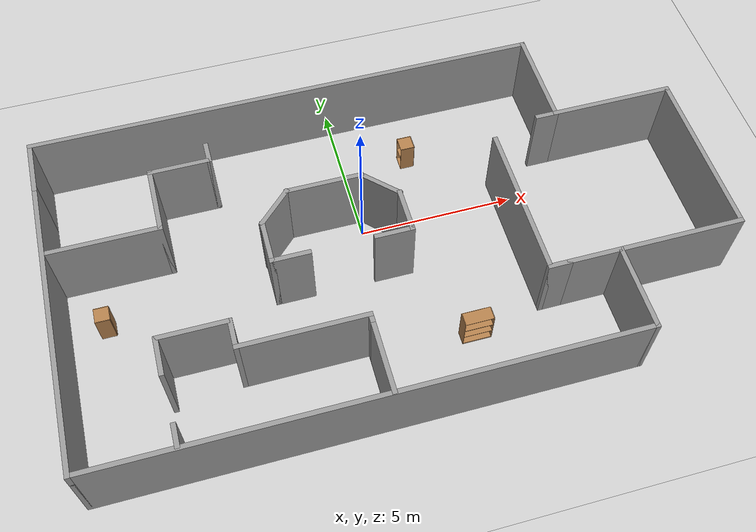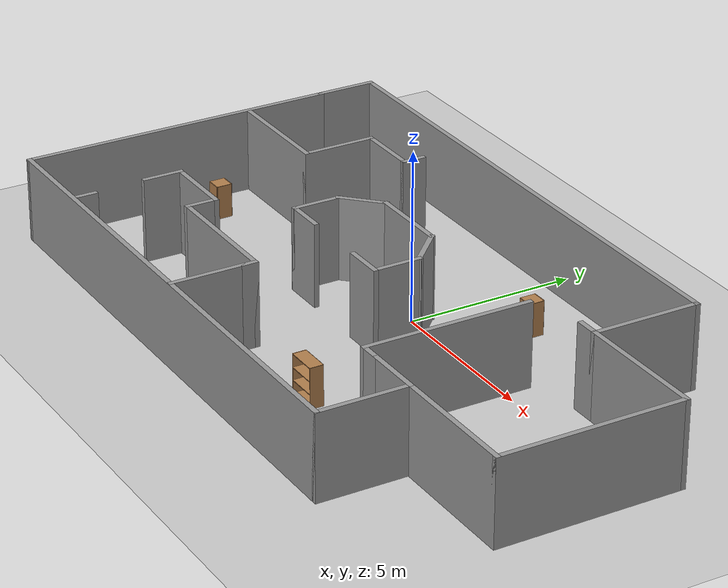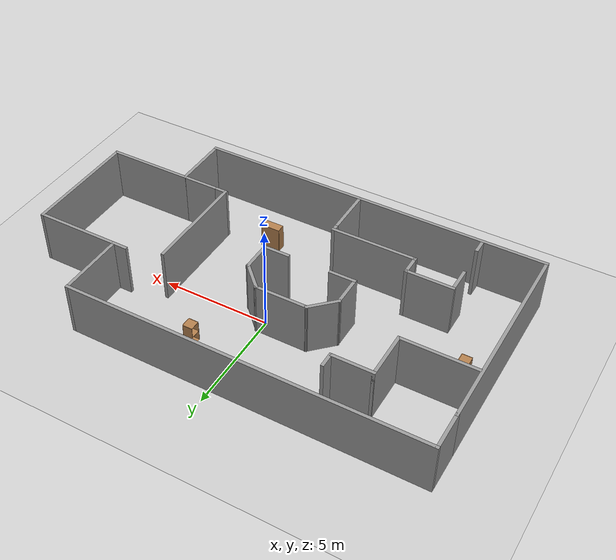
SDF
<sdf version="1.7">
 <world name="default">
  <light name="sun" type="directional">
   <pose>0 0 10 0 -0 0</pose>
   <diffuse>0.8 0.8 0.8 1</diffuse>
   <specular>0.2 0.2 0.2 1</specular>
   <attenuation>
    <range>1000</range>
    <constant>0.9</constant>
    <linear>0.01</linear>
    <quadratic>0.001</quadratic>
   </attenuation>
   <direction>-0.5 0.1 -0.9</direction>
   <spot><inner_angle>0</inner_angle><outer_angle>0</outer_angle><falloff>0</falloff></spot>
  </light>
  <model name="ground_plane">
   <static>1</static>
   <link name="link">
    <collision name="collision">
     <geometry><plane><normal>0 0 1</normal><size>100 100</size></plane></geometry>
     <surface>
      <contact><collide_bitmask>65535</collide_bitmask></contact>
      <friction><ode><mu>100</mu><mu2>50</mu2></ode></friction>
     </surface>
    </collision>
    <visual name="visual">
     <cast_shadows>0</cast_shadows>
     <geometry><plane><normal>0 0 1</normal><size>100 100</size></plane></geometry>
     <material>
      <script><uri>file://media/materials/scripts/gazebo.material</uri><name>Gazebo/Grey</name></script>
     </material>
    </visual>
   </link>
  </model>
  <gravity>0 0 -9.8</gravity>
  <magnetic_field>6e-06 2.3e-05 -4.2e-05</magnetic_field>
  <atmosphere type="adiabatic"/>
  <physics type="ode">
   <max_step_size>0.001</max_step_size>
   <real_time_factor>1</real_time_factor>
   <real_time_update_rate>1000</real_time_update_rate>
  </physics>
  <scene><ambient>0.4 0.4 0.4 1</ambient><background>0.7 0.7 0.7 1</background><shadows>1</shadows></scene>
  <spherical_coordinates>
   <surface_model>EARTH_WGS84</surface_model>
   <latitude_deg>0</latitude_deg>
   <longitude_deg>0</longitude_deg>
   <elevation>0</elevation>
   <heading_deg>0</heading_deg>
  </spherical_coordinates>
  <model name="layer3">
   <pose>0.50924 -1.20559 0 0 -0 0</pose>
   <link name="Wall_0">
    <collision name="Wall_0_Collision">
     <geometry><box><size>9.5 0.15 2.5</size></box></geometry>
     <pose>0 0 1.25 0 -0 0</pose>
    </collision>
    <visual name="Wall_0_Visual">
     <pose>0 0 1.25 0 -0 0</pose>
     <geometry><box><size>9.5 0.15 2.5</size></box></geometry>
     <material>
      <script><uri>file://media/materials/scripts/gazebo.material</uri><name>Gazebo/Grey</name></script>
      <ambient>1 1 1 1</ambient>
     </material>
     <meta><layer>0</layer></meta>
    </visual>
    <pose>-10.1 -0.85 0 0 -0 -1.5708</pose>
   </link>
   <link name="Wall_1">
    <collision name="Wall_1_Collision">
     <geometry><box><size>16.5 0.15 2.5</size></box></geometry>
     <pose>0 0 1.25 0 -0 0</pose>
    </collision>
    <visual name="Wall_1_Visual">
     <pose>0 0 1.25 0 -0 0</pose>
     <geometry><box><size>16.5 0.15 2.5</size></box></geometry>
     <material>
      <script><uri>file://media/materials/scripts/gazebo.material</uri><name>Gazebo/Grey</name></script>
      <ambient>1 1 1 1</ambient>
     </material>
     <meta><layer>0</layer></meta>
    </visual>
    <pose>-1.925 -5.525 0 0 -0 0</pose>
   </link>
   <link name="Wall_10">
    <collision name="Wall_10_Collision">
     <geometry><box><size>1.5 0.15 2.5</size></box></geometry>
     <pose>0 0 1.25 0 -0 0</pose>
    </collision>
    <visual name="Wall_10_Visual">
     <pose>0 0 1.25 0 -0 0</pose>
     <geometry><box><size>1.5 0.15 2.5</size></box></geometry>
     <material>
      <script><uri>file://media/materials/scripts/gazebo.material</uri><name>Gazebo/Grey</name></script>
      <ambient>1 1 1 1</ambient>
     </material>
     <meta><layer>0</layer></meta>
    </visual>
    <pose>-3.20505 1.23698 0 0 -0 -2.35619</pose>
   </link>
   <link name="Wall_11">
    <collision name="Wall_11_Collision">
     <geometry><box><size>1.5 0.15 2.5</size></box></geometry>
     <pose>0 0 1.25 0 -0 0</pose>
    </collision>
    <visual name="Wall_11_Visual">
     <pose>0 0 1.25 0 -0 0</pose>
     <geometry><box><size>1.5 0.15 2.5</size></box></geometry>
     <material>
      <script><uri>file://media/materials/scripts/gazebo.material</uri><name>Gazebo/Grey</name></script>
      <ambient>1 1 1 1</ambient>
     </material>
     <meta><layer>0</layer></meta>
    </visual>
    <pose>-3.68235 0.08468 0 0 -0 -1.5708</pose>
   </link>
   <link name="Wall_12">
    <collision name="Wall_12_Collision">
     <geometry><box><size>0.16 0.15 2.5</size></box></geometry>
     <pose>0 0 1.25 0 -0 0</pose>
    </collision>
    <visual name="Wall_12_Visual">
     <pose>0 0 1.25 0 -0 0</pose>
     <geometry><box><size>0.16 0.15 2.5</size></box></geometry>
     <material>
      <script><uri>file://media/materials/scripts/gazebo.material</uri><name>Gazebo/Grey</name></script>
      <ambient>1 1 1 1</ambient>
     </material>
     <meta><layer>0</layer></meta>
    </visual>
    <pose>-3.67735 -0.59032 0 0 -0 0</pose>
   </link>
   <link name="Wall_13">
    <collision name="Wall_13_Collision">
     <geometry><box><size>1.25 0.15 2.5</size></box></geometry>
     <pose>0 0 1.25 0 -0 0</pose>
    </collision>
    <visual name="Wall_13_Visual">
     <pose>0 0 1.25 0 -0 0</pose>
     <geometry><box><size>1.25 0.15 2.5</size></box></geometry>
     <material>
      <script><uri>file://media/materials/scripts/gazebo.material</uri><name>Gazebo/Grey</name></script>
      <ambient>1 1 1 1</ambient>
     </material>
     <meta><layer>0</layer></meta>
    </visual>
    <pose>-3.12235 -0.59032 0 0 -0 0</pose>
   </link>
   <link name="Wall_15">
    <collision name="Wall_15_Collision">
     <geometry><box><size>2.5 0.15 2.5</size></box></geometry>
     <pose>0 0 1.25 0 -0 0</pose>
    </collision>
    <visual name="Wall_15_Visual">
     <pose>0 0 1.25 0 -0 0</pose>
     <geometry><box><size>2.5 0.15 2.5</size></box></geometry>
     <material>
      <script><uri>file://media/materials/scripts/gazebo.material</uri><name>Gazebo/Grey</name></script>
      <ambient>1 1 1 1</ambient>
     </material>
     <meta><layer>0</layer></meta>
    </visual>
    <pose>-1.55276 1.71427 0 0 -0 0</pose>
   </link>
   <link name="Wall_16">
    <collision name="Wall_16_Collision">
     <geometry><box><size>1.5 0.15 2.5</size></box></geometry>
     <pose>0 0 1.25 0 -0 0</pose>
    </collision>
    <visual name="Wall_16_Visual">
     <pose>0 0 1.25 0 -0 0</pose>
     <geometry><box><size>1.5 0.15 2.5</size></box></geometry>
     <material>
      <script><uri>file://media/materials/scripts/gazebo.material</uri><name>Gazebo/Grey</name></script>
      <ambient>1 1 1 1</ambient>
     </material>
     <meta><layer>0</layer></meta>
    </visual>
    <pose>0.099542 1.23698 0 0 -0 -0.785398</pose>
   </link>
   <link name="Wall_17">
    <collision name="Wall_17_Collision">
     <geometry><box><size>1.5 0.15 2.5</size></box></geometry>
     <pose>0 0 1.25 0 -0 0</pose>
    </collision>
    <visual name="Wall_17_Visual">
     <pose>0 0 1.25 0 -0 0</pose>
     <geometry><box><size>1.5 0.15 2.5</size></box></geometry>
     <material>
      <script><uri>file://media/materials/scripts/gazebo.material</uri><name>Gazebo/Grey</name></script>
      <ambient>1 1 1 1</ambient>
     </material>
     <meta><layer>0</layer></meta>
    </visual>
    <pose>0.576839 0.08468 0 0 -0 -1.5708</pose>
   </link>
   <link name="Wall_18">
    <collision name="Wall_18_Collision">
     <geometry><box><size>1.25 0.15 2.5</size></box></geometry>
     <pose>0 0 1.25 0 -0 0</pose>
    </collision>
    <visual name="Wall_18_Visual">
     <pose>0 0 1.25 0 -0 0</pose>
     <geometry><box><size>1.25 0.15 2.5</size></box></geometry>
     <material>
      <script><uri>file://media/materials/scripts/gazebo.material</uri><name>Gazebo/Grey</name></script>
      <ambient>1 1 1 1</ambient>
     </material>
     <meta><layer>0</layer></meta>
    </visual>
    <pose>0.026839 -0.59032 0 0 -0 3.14159</pose>
   </link>
   <link name="Wall_2">
    <collision name="Wall_2_Collision">
     <geometry><box><size>2.75 0.15 2.5</size></box></geometry>
     <pose>0 0 1.25 0 -0 0</pose>
    </collision>
    <visual name="Wall_2_Visual">
     <pose>0 0 1.25 0 -0 0</pose>
     <geometry><box><size>2.75 0.15 2.5</size></box></geometry>
     <material>
      <script><uri>file://media/materials/scripts/gazebo.material</uri><name>Gazebo/Grey</name></script>
      <ambient>1 1 1 1</ambient>
     </material>
     <meta><layer>0</layer></meta>
    </visual>
    <pose>6.25 -4.225 0 0 -0 1.5708</pose>
   </link>
   <link name="Wall_20">
    <collision name="Wall_20_Collision">
     <geometry><box><size>3.5 0.15 2.5</size></box></geometry>
     <pose>0 0 1.25 0 -0 0</pose>
    </collision>
    <visual name="Wall_20_Visual">
     <pose>0 0 1.25 0 -0 0</pose>
     <geometry><box><size>3.5 0.15 2.5</size></box></geometry>
     <material>
      <script><uri>file://media/materials/scripts/gazebo.material</uri><name>Gazebo/Grey</name></script>
      <ambient>1 1 1 1</ambient>
     </material>
     <meta><layer>0</layer></meta>
    </visual>
    <pose>-8.30264 1.40837 0 0 -0 0</pose>
   </link>
   <link name="Wall_21">
    <collision name="Wall_21_Collision">
     <geometry><box><size>2.25 0.15 2.5</size></box></geometry>
     <pose>0 0 1.25 0 -0 0</pose>
    </collision>
    <visual name="Wall_21_Visual">
     <pose>0 0 1.25 0 -0 0</pose>
     <geometry><box><size>2.25 0.15 2.5</size></box></geometry>
     <material>
      <script><uri>file://media/materials/scripts/gazebo.material</uri><name>Gazebo/Grey</name></script>
      <ambient>1 1 1 1</ambient>
     </material>
     <meta><layer>0</layer></meta>
    </visual>
    <pose>-6.62764 2.45837 0 0 -0 1.5708</pose>
   </link>
   <link name="Wall_22">
    <collision name="Wall_22_Collision">
     <geometry><box><size>2 0.15 2.5</size></box></geometry>
     <pose>0 0 1.25 0 -0 0</pose>
    </collision>
    <visual name="Wall_22_Visual">
     <pose>0 0 1.25 0 -0 0</pose>
     <geometry><box><size>2 0.15 2.5</size></box></geometry>
     <material>
      <script><uri>file://media/materials/scripts/gazebo.material</uri><name>Gazebo/Grey</name></script>
      <ambient>1 1 1 1</ambient>
     </material>
     <meta><layer>0</layer></meta>
    </visual>
    <pose>-5.70264 3.50837 0 0 -0 0</pose>
   </link>
   <link name="Wall_25">
    <collision name="Wall_25_Collision">
     <geometry><box><size>0.75 0.15 2.5</size></box></geometry>
     <pose>0 0 1.25 0 -0 0</pose>
    </collision>
    <visual name="Wall_25_Visual">
     <pose>0 0 1.25 0 -0 0</pose>
     <geometry><box><size>0.75 0.15 2.5</size></box></geometry>
     <material>
      <script><uri>file://media/materials/scripts/gazebo.material</uri><name>Gazebo/Grey</name></script>
      <ambient>1 1 1 1</ambient>
     </material>
     <meta><layer>0</layer></meta>
    </visual>
    <pose>-4.77764 3.80837 0 0 -0 1.5708</pose>
   </link>
   <link name="Wall_27">
    <collision name="Wall_27_Collision">
     <geometry><box><size>1.75 0.15 2.5</size></box></geometry>
     <pose>0 0 1.25 0 -0 0</pose>
    </collision>
    <visual name="Wall_27_Visual">
     <pose>0 0 1.25 0 -0 0</pose>
     <geometry><box><size>1.75 0.15 2.5</size></box></geometry>
     <material>
      <script><uri>file://media/materials/scripts/gazebo.material</uri><name>Gazebo/Grey</name></script>
      <ambient>1 1 1 1</ambient>
     </material>
     <meta><layer>0</layer></meta>
    </visual>
    <pose>5.45 -2.925 0 0 -0 3.14159</pose>
   </link>
   <link name="Wall_28">
    <collision name="Wall_28_Collision">
     <geometry><box><size>0.75 0.15 2.5</size></box></geometry>
     <pose>0 0 1.25 0 -0 0</pose>
    </collision>
    <visual name="Wall_28_Visual">
     <pose>0 0 1.25 0 -0 0</pose>
     <geometry><box><size>0.75 0.15 2.5</size></box></geometry>
     <material>
      <script><uri>file://media/materials/scripts/gazebo.material</uri><name>Gazebo/Grey</name></script>
      <ambient>1 1 1 1</ambient>
     </material>
     <meta><layer>0</layer></meta>
    </visual>
    <pose>4.35 -2.925 0 0 -0 3.14159</pose>
   </link>
   <link name="Wall_29">
    <collision name="Wall_29_Collision">
     <geometry><box><size>5 0.15 2.5</size></box></geometry>
     <pose>0 0 1.25 0 -0 0</pose>
    </collision>
    <visual name="Wall_29_Visual">
     <pose>0 0 1.25 0 -0 0</pose>
     <geometry><box><size>5 0.15 2.5</size></box></geometry>
     <material>
      <script><uri>file://media/materials/scripts/gazebo.material</uri><name>Gazebo/Grey</name></script>
      <ambient>1 1 1 1</ambient>
     </material>
     <meta><layer>0</layer></meta>
    </visual>
    <pose>4.05 -0.5 0 0 -0 1.5708</pose>
   </link>
   <link name="Wall_3">
    <collision name="Wall_3_Collision">
     <geometry><box><size>4 0.15 2.5</size></box></geometry>
     <pose>0 0 1.25 0 -0 0</pose>
    </collision>
    <visual name="Wall_3_Visual">
     <pose>0 0 1.25 0 -0 0</pose>
     <geometry><box><size>4 0.15 2.5</size></box></geometry>
     <material>
      <script><uri>file://media/materials/scripts/gazebo.material</uri><name>Gazebo/Grey</name></script>
      <ambient>1 1 1 1</ambient>
     </material>
     <meta><layer>0</layer></meta>
    </visual>
    <pose>8.175 -2.925 0 0 -0 0</pose>
   </link>
   <link name="Wall_32">
    <collision name="Wall_32_Collision">
     <geometry><box><size>0.75 0.15 2.5</size></box></geometry>
     <pose>0 0 1.25 0 -0 0</pose>
    </collision>
    <visual name="Wall_32_Visual">
     <pose>0 0 1.25 0 -0 0</pose>
     <geometry><box><size>0.75 0.15 2.5</size></box></geometry>
     <material>
      <script><uri>file://media/materials/scripts/gazebo.material</uri><name>Gazebo/Grey</name></script>
      <ambient>1 1 1 1</ambient>
     </material>
     <meta><layer>0</layer></meta>
    </visual>
    <pose>5.95 2.425 0 0 -0 3.14159</pose>
   </link>
   <link name="Wall_34">
    <collision name="Wall_34_Collision">
     <geometry><box><size>2.25 0.15 2.5</size></box></geometry>
     <pose>0 0 1.25 0 -0 0</pose>
    </collision>
    <visual name="Wall_34_Visual">
     <pose>0 0 1.25 0 -0 0</pose>
     <geometry><box><size>2.25 0.15 2.5</size></box></geometry>
     <material>
      <script><uri>file://media/materials/scripts/gazebo.material</uri><name>Gazebo/Grey</name></script>
      <ambient>1 1 1 1</ambient>
     </material>
     <meta><layer>0</layer></meta>
    </visual>
    <pose>-1.38179 -4.45502 0 0 -0 1.5708</pose>
   </link>
   <link name="Wall_35">
    <collision name="Wall_35_Collision">
     <geometry><box><size>0.5 0.15 2.5</size></box></geometry>
     <pose>0 0 1.25 0 -0 0</pose>
    </collision>
    <visual name="Wall_35_Visual">
     <pose>0 0 1.25 0 -0 0</pose>
     <geometry><box><size>0.5 0.15 2.5</size></box></geometry>
     <material>
      <script><uri>file://media/materials/scripts/gazebo.material</uri><name>Gazebo/Grey</name></script>
      <ambient>1 1 1 1</ambient>
     </material>
     <meta><layer>0</layer></meta>
    </visual>
    <pose>-1.38179 -3.23002 0 0 -0 1.5708</pose>
   </link>
   <link name="Wall_36">
    <collision name="Wall_36_Collision">
     <geometry><box><size>4 0.15 2.5</size></box></geometry>
     <pose>0 0 1.25 0 -0 0</pose>
    </collision>
    <visual name="Wall_36_Visual">
     <pose>0 0 1.25 0 -0 0</pose>
     <geometry><box><size>4 0.15 2.5</size></box></geometry>
     <material>
      <script><uri>file://media/materials/scripts/gazebo.material</uri><name>Gazebo/Grey</name></script>
      <ambient>1 1 1 1</ambient>
     </material>
     <meta><layer>0</layer></meta>
    </visual>
    <pose>-3.30679 -3.05502 0 0 -0 3.14159</pose>
   </link>
   <link name="Wall_4">
    <collision name="Wall_4_Collision">
     <geometry><box><size>5.5 0.15 2.5</size></box></geometry>
     <pose>0 0 1.25 0 -0 0</pose>
    </collision>
    <visual name="Wall_4_Visual">
     <pose>0 0 1.25 0 -0 0</pose>
     <geometry><box><size>5.5 0.15 2.5</size></box></geometry>
     <material>
      <script><uri>file://media/materials/scripts/gazebo.material</uri><name>Gazebo/Grey</name></script>
      <ambient>1 1 1 1</ambient>
     </material>
     <meta><layer>0</layer></meta>
    </visual>
    <pose>10.1 -0.25 0 0 -0 1.5708</pose>
   </link>
   <link name="Wall_42">
    <collision name="Wall_42_Collision">
     <geometry><box><size>1 0.15 2.5</size></box></geometry>
     <pose>0 0 1.25 0 -0 0</pose>
    </collision>
    <visual name="Wall_42_Visual">
     <pose>0 0 1.25 0 -0 0</pose>
     <geometry><box><size>1 0.15 2.5</size></box></geometry>
     <material>
      <script><uri>file://media/materials/scripts/gazebo.material</uri><name>Gazebo/Grey</name></script>
      <ambient>1 1 1 1</ambient>
     </material>
     <meta><layer>0</layer></meta>
    </visual>
    <pose>-5.23179 -2.63002 0 0 -0 1.5708</pose>
   </link>
   <link name="Wall_45">
    <collision name="Wall_45_Collision">
     <geometry><box><size>2.25 0.15 2.5</size></box></geometry>
     <pose>0 0 1.25 0 -0 0</pose>
    </collision>
    <visual name="Wall_45_Visual">
     <pose>0 0 1.25 0 -0 0</pose>
     <geometry><box><size>2.25 0.15 2.5</size></box></geometry>
     <material>
      <script><uri>file://media/materials/scripts/gazebo.material</uri><name>Gazebo/Grey</name></script>
      <ambient>1 1 1 1</ambient>
     </material>
     <meta><layer>0</layer></meta>
    </visual>
    <pose>-6.28179 -2.20502 0 0 -0 3.14159</pose>
   </link>
   <link name="Wall_46">
    <collision name="Wall_46_Collision">
     <geometry><box><size>1.25 0.15 2.5</size></box></geometry>
     <pose>0 0 1.25 0 -0 0</pose>
    </collision>
    <visual name="Wall_46_Visual">
     <pose>0 0 1.25 0 -0 0</pose>
     <geometry><box><size>1.25 0.15 2.5</size></box></geometry>
     <material>
      <script><uri>file://media/materials/scripts/gazebo.material</uri><name>Gazebo/Grey</name></script>
      <ambient>1 1 1 1</ambient>
     </material>
     <meta><layer>0</layer></meta>
    </visual>
    <pose>-7.33178 -2.75502 0 0 -0 -1.5708</pose>
   </link>
   <link name="Wall_48">
    <collision name="Wall_48_Collision">
     <geometry><box><size>0.75 0.15 2.5</size></box></geometry>
     <pose>0 0 1.25 0 -0 0</pose>
    </collision>
    <visual name="Wall_48_Visual">
     <pose>0 0 1.25 0 -0 0</pose>
     <geometry><box><size>0.75 0.15 2.5</size></box></geometry>
     <material>
      <script><uri>file://media/materials/scripts/gazebo.material</uri><name>Gazebo/Grey</name></script>
      <ambient>1 1 1 1</ambient>
     </material>
     <meta><layer>0</layer></meta>
    </visual>
    <pose>-7.25511 -5.17443 0 0 -0 1.5708</pose>
   </link>
   <link name="Wall_5">
    <collision name="Wall_5_Collision">
     <geometry><box><size>4 0.15 2.5</size></box></geometry>
     <pose>0 0 1.25 0 -0 0</pose>
    </collision>
    <visual name="Wall_5_Visual">
     <pose>0 0 1.25 0 -0 0</pose>
     <geometry><box><size>4 0.15 2.5</size></box></geometry>
     <material>
      <script><uri>file://media/materials/scripts/gazebo.material</uri><name>Gazebo/Grey</name></script>
      <ambient>1 1 1 1</ambient>
     </material>
     <meta><layer>0</layer></meta>
    </visual>
    <pose>8.175 2.425 0 0 -0 3.14159</pose>
   </link>
   <link name="Wall_6">
    <collision name="Wall_6_Collision">
     <geometry><box><size>3.25 0.15 2.5</size></box></geometry>
     <pose>0 0 1.25 0 -0 0</pose>
    </collision>
    <visual name="Wall_6_Visual">
     <pose>0 0 1.25 0 -0 0</pose>
     <geometry><box><size>3.25 0.15 2.5</size></box></geometry>
     <material>
      <script><uri>file://media/materials/scripts/gazebo.material</uri><name>Gazebo/Grey</name></script>
      <ambient>1 1 1 1</ambient>
     </material>
     <meta><layer>0</layer></meta>
    </visual>
    <pose>6.25 3.975 0 0 -0 1.5708</pose>
   </link>
   <link name="Wall_7">
    <collision name="Wall_7_Collision">
     <geometry><box><size>16.5 0.15 2.5</size></box></geometry>
     <pose>0 0 1.25 0 -0 0</pose>
    </collision>
    <visual name="Wall_7_Visual">
     <pose>0 0 1.25 0 -0 0</pose>
     <geometry><box><size>16.5 0.15 2.5</size></box></geometry>
     <material>
      <script><uri>file://media/materials/scripts/gazebo.material</uri><name>Gazebo/Grey</name></script>
      <ambient>1 1 1 1</ambient>
     </material>
     <meta><layer>0</layer></meta>
    </visual>
    <pose>-1.925 5.525 0 0 -0 3.14159</pose>
   </link>
   <link name="Wall_8">
    <collision name="Wall_8_Collision">
     <geometry><box><size>1.85 0.15 2.5</size></box></geometry>
     <pose>0 0 1.25 0 -0 0</pose>
    </collision>
    <visual name="Wall_8_Visual">
     <pose>0 0 1.25 0 -0 0</pose>
     <geometry><box><size>1.85 0.15 2.5</size></box></geometry>
     <material>
      <script><uri>file://media/materials/scripts/gazebo.material</uri><name>Gazebo/Grey</name></script>
      <ambient>1 1 1 1</ambient>
     </material>
     <meta><layer>0</layer></meta>
    </visual>
    <pose>-10.1 4.675 0 0 -0 -1.5708</pose>
   </link>
   <static>1</static>
  </model>
  <model name="bookshelf">
   <static>1</static>
   <link name="link">
    <inertial><mass>1</mass></inertial>
    <collision name="back">
     <pose>0 0.005 0.6 0 -0 0</pose>
     <geometry><box><size>0.9 0.01 1.2</size></box></geometry>
    </collision>
    <visual name="visual1">
     <pose>0 0.005 0.6 0 -0 0</pose>
     <geometry><box><size>0.9 0.01 1.2</size></box></geometry>
     <material>
      <script><uri>file://media/materials/scripts/gazebo.material</uri><name>Gazebo/Wood</name></script>
     </material>
    </visual>
    <collision name="left_side">
     <pose>0.45 -0.195 0.6 0 -0 0</pose>
     <geometry><box><size>0.02 0.4 1.2</size></box></geometry>
    </collision>
    <visual name="visual2">
     <pose>0.45 -0.195 0.6 0 -0 0</pose>
     <geometry><box><size>0.02 0.4 1.2</size></box></geometry>
     <material>
      <script><uri>file://media/materials/scripts/gazebo.material</uri><name>Gazebo/Wood</name></script>
     </material>
    </visual>
    <collision name="right_side">
     <pose>-0.45 -0.195 0.6 0 -0 0</pose>
     <geometry><box><size>0.02 0.4 1.2</size></box></geometry>
    </collision>
    <visual name="visual3">
     <pose>-0.45 -0.195 0.6 0 -0 0</pose>
     <geometry><box><size>0.02 0.4 1.2</size></box></geometry>
     <material>
      <script><uri>file://media/materials/scripts/gazebo.material</uri><name>Gazebo/Wood</name></script>
     </material>
    </visual>
    <collision name="bottom">
     <pose>0 -0.195 0.03 0 -0 0</pose>
     <geometry><box><size>0.88 0.4 0.06</size></box></geometry>
    </collision>
    <visual name="visual4">
     <pose>0 -0.195 0.03 0 -0 0</pose>
     <geometry><box><size>0.88 0.4 0.06</size></box></geometry>
     <material>
      <script><uri>file://media/materials/scripts/gazebo.material</uri><name>Gazebo/Wood</name></script>
     </material>
    </visual>
    <collision name="top">
     <pose>0 -0.195 1.19 0 -0 0</pose>
     <geometry><box><size>0.88 0.4 0.02</size></box></geometry>
    </collision>
    <visual name="visual5">
     <pose>0 -0.195 1.19 0 -0 0</pose>
     <geometry><box><size>0.88 0.4 0.02</size></box></geometry>
     <material>
      <script><uri>file://media/materials/scripts/gazebo.material</uri><name>Gazebo/Wood</name></script>
     </material>
    </visual>
    <collision name="low_shelf">
     <pose>0 -0.195 0.43 0 -0 0</pose>
     <geometry><box><size>0.88 0.4 0.02</size></box></geometry>
    </collision>
    <visual name="visual6">
     <pose>0 -0.195 0.43 0 -0 0</pose>
     <geometry><box><size>0.88 0.4 0.02</size></box></geometry>
     <material>
      <script><uri>file://media/materials/scripts/gazebo.material</uri><name>Gazebo/Wood</name></script>
     </material>
    </visual>
    <collision name="high_shelf">
     <pose>0 -0.195 0.8 0 -0 0</pose>
     <geometry><box><size>0.88 0.4 0.02</size></box></geometry>
    </collision>
    <visual name="visual7">
     <pose>0 -0.195 0.8 0 -0 0</pose>
     <geometry><box><size>0.88 0.4 0.02</size></box></geometry>
     <material>
      <script><uri>file://media/materials/scripts/gazebo.material</uri><name>Gazebo/Wood</name></script>
     </material>
    </visual>
   </link>
   <pose>2.35064 -4.29894 0 0 -0 0</pose>
  </model>
  <model name="cabinet">
   <static>1</static>
   <link name="cabinet_bottom_plate">
    <inertial>
     <pose>0 0 -1 0 -0 0</pose>
     <inertia><ixx>2.05</ixx><ixy>0</ixy><ixz>0</ixz><iyy>2.05</iyy><iyz>0</iyz><izz>2.05</izz></inertia>
     <mass>25</mass>
    </inertial>
    <collision name="cabinet_bottom_plate_geom">
     <pose>0 0 0.01 0 -0 0</pose>
     <geometry><box><size>0.45 0.45 0.02</size></box></geometry>
    </collision>
    <visual name="cabinet_bottom_plate_geom_visual">
     <pose>0 0 0.01 0 -0 0</pose>
     <geometry><box><size>0.45 0.45 0.02</size></box></geometry>
     <material>
      <script><uri>file://media/materials/scripts/gazebo.material</uri><name>Gazebo/Wood</name></script>
     </material>
    </visual>
    <collision name="cabinet_bottom_plate_geom_cabinet_back_plate">
     <pose>0.235 0 0.51 0 -0 0</pose>
     <geometry><box><size>0.02 0.45 1.02</size></box></geometry>
    </collision>
    <visual name="cabinet_bottom_plate_geom_cabinet_back_plate_visual">
     <pose>0.235 0 0.51 0 -0 0</pose>
     <geometry><box><size>0.02 0.45 1.02</size></box></geometry>
     <material>
      <script><uri>file://media/materials/scripts/gazebo.material</uri><name>Gazebo/Wood</name></script>
     </material>
    </visual>
    <collision name="cabinet_bottom_plate_geom_cabinet_left_plate">
     <pose>0 0.235 0.51 0 -0 0</pose>
     <geometry><box><size>0.45 0.02 1.02</size></box></geometry>
    </collision>
    <visual name="cabinet_bottom_plate_geom_cabinet_left_plate_visual">
     <pose>0 0.235 0.51 0 -0 0</pose>
     <geometry><box><size>0.45 0.02 1.02</size></box></geometry>
     <material>
      <script><uri>file://media/materials/scripts/gazebo.material</uri><name>Gazebo/Wood</name></script>
     </material>
    </visual>
    <collision name="cabinet_bottom_plate_geom_cabinet_middle_plate">
     <pose>0 0 0.51 0 -0 0</pose>
     <geometry><box><size>0.45 0.45 0.02</size></box></geometry>
    </collision>
    <visual name="cabinet_bottom_plate_geom_cabinet_middle_plate_visual">
     <pose>0 0 0.51 0 -0 0</pose>
     <geometry><box><size>0.45 0.45 0.02</size></box></geometry>
     <material>
      <script><uri>file://media/materials/scripts/gazebo.material</uri><name>Gazebo/Wood</name></script>
     </material>
    </visual>
    <collision name="cabinet_bottom_plate_geom_cabinet_right_plate">
     <pose>0 -0.235 0.51 0 -0 0</pose>
     <geometry><box><size>0.45 0.02 1.02</size></box></geometry>
    </collision>
    <visual name="cabinet_bottom_plate_geom_cabinet_right_plate_visual">
     <pose>0 -0.235 0.51 0 -0 0</pose>
     <geometry><box><size>0.45 0.02 1.02</size></box></geometry>
     <material>
      <script><uri>file://media/materials/scripts/gazebo.material</uri><name>Gazebo/Wood</name></script>
     </material>
    </visual>
    <collision name="cabinet_bottom_plate_geom_cabinet_top_plate">
     <pose>0 0 1.01 0 -0 0</pose>
     <geometry><box><size>0.45 0.45 0.02</size></box></geometry>
    </collision>
    <visual name="cabinet_bottom_plate_geom_cabinet_top_plate_visual">
     <pose>0 0 1.01 0 -0 0</pose>
     <geometry><box><size>0.45 0.45 0.02</size></box></geometry>
     <material>
      <script><uri>file://media/materials/scripts/gazebo.material</uri><name>Gazebo/Wood</name></script>
     </material>
    </visual>
   </link>
   <pose>2.14502 2.42748 0 0 -0 0</pose>
  </model>
  <model name="cabinet_0">
   <static>1</static>
   <link name="cabinet_bottom_plate">
    <inertial>
     <pose>0 0 -1 0 -0 0</pose>
     <inertia><ixx>2.05</ixx><ixy>0</ixy><ixz>0</ixz><iyy>2.05</iyy><iyz>0</iyz><izz>2.05</izz></inertia>
     <mass>25</mass>
    </inertial>
    <collision name="cabinet_bottom_plate_geom">
     <pose>0 0 0.01 0 -0 0</pose>
     <geometry><box><size>0.45 0.45 0.02</size></box></geometry>
    </collision>
    <visual name="cabinet_bottom_plate_geom_visual">
     <pose>0 0 0.01 0 -0 0</pose>
     <geometry><box><size>0.45 0.45 0.02</size></box></geometry>
     <material>
      <script><uri>file://media/materials/scripts/gazebo.material</uri><name>Gazebo/Wood</name></script>
     </material>
    </visual>
    <collision name="cabinet_bottom_plate_geom_cabinet_back_plate">
     <pose>0.235 0 0.51 0 -0 0</pose>
     <geometry><box><size>0.02 0.45 1.02</size></box></geometry>
    </collision>
    <visual name="cabinet_bottom_plate_geom_cabinet_back_plate_visual">
     <pose>0.235 0 0.51 0 -0 0</pose>
     <geometry><box><size>0.02 0.45 1.02</size></box></geometry>
     <material>
      <script><uri>file://media/materials/scripts/gazebo.material</uri><name>Gazebo/Wood</name></script>
     </material>
    </visual>
    <collision name="cabinet_bottom_plate_geom_cabinet_left_plate">
     <pose>0 0.235 0.51 0 -0 0</pose>
     <geometry><box><size>0.45 0.02 1.02</size></box></geometry>
    </collision>
    <visual name="cabinet_bottom_plate_geom_cabinet_left_plate_visual">
     <pose>0 0.235 0.51 0 -0 0</pose>
     <geometry><box><size>0.45 0.02 1.02</size></box></geometry>
     <material>
      <script><uri>file://media/materials/scripts/gazebo.material</uri><name>Gazebo/Wood</name></script>
     </material>
    </visual>
    <collision name="cabinet_bottom_plate_geom_cabinet_middle_plate">
     <pose>0 0 0.51 0 -0 0</pose>
     <geometry><box><size>0.45 0.45 0.02</size></box></geometry>
    </collision>
    <visual name="cabinet_bottom_plate_geom_cabinet_middle_plate_visual">
     <pose>0 0 0.51 0 -0 0</pose>
     <geometry><box><size>0.45 0.45 0.02</size></box></geometry>
     <material>
      <script><uri>file://media/materials/scripts/gazebo.material</uri><name>Gazebo/Wood</name></script>
     </material>
    </visual>
    <collision name="cabinet_bottom_plate_geom_cabinet_right_plate">
     <pose>0 -0.235 0.51 0 -0 0</pose>
     <geometry><box><size>0.45 0.02 1.02</size></box></geometry>
    </collision>
    <visual name="cabinet_bottom_plate_geom_cabinet_right_plate_visual">
     <pose>0 -0.235 0.51 0 -0 0</pose>
     <geometry><box><size>0.45 0.02 1.02</size></box></geometry>
     <material>
      <script><uri>file://media/materials/scripts/gazebo.material</uri><name>Gazebo/Wood</name></script>
     </material>
    </visual>
    <collision name="cabinet_bottom_plate_geom_cabinet_top_plate">
     <pose>0 0 1.01 0 -0 0</pose>
     <geometry><box><size>0.45 0.45 0.02</size></box></geometry>
    </collision>
    <visual name="cabinet_bottom_plate_geom_cabinet_top_plate_visual">
     <pose>0 0 1.01 0 -0 0</pose>
     <geometry><box><size>0.45 0.45 0.02</size></box></geometry>
     <material>
      <script><uri>file://media/materials/scripts/gazebo.material</uri><name>Gazebo/Wood</name></script>
     </material>
    </visual>
   </link>
   <pose>-8.39662 -1.36895 0 0 -0 0</pose>
  </model>
 </world>
</sdf>
